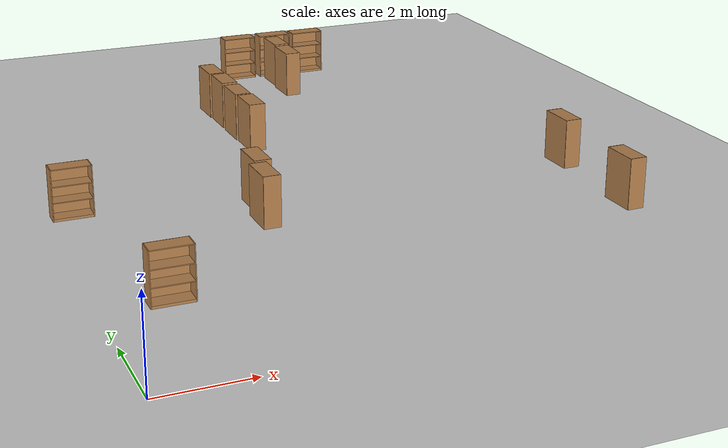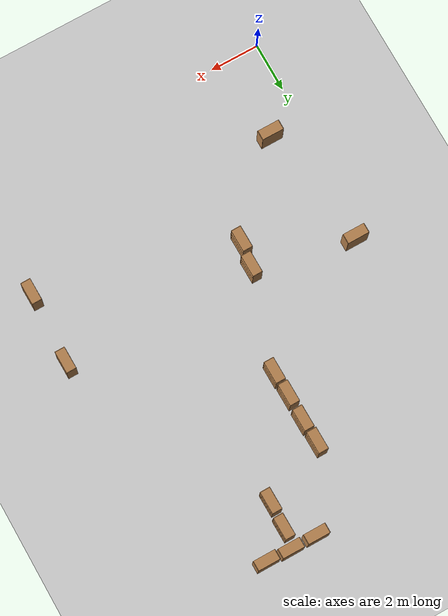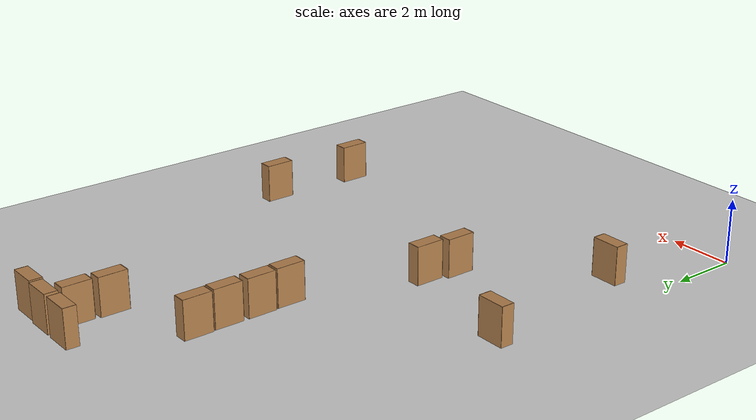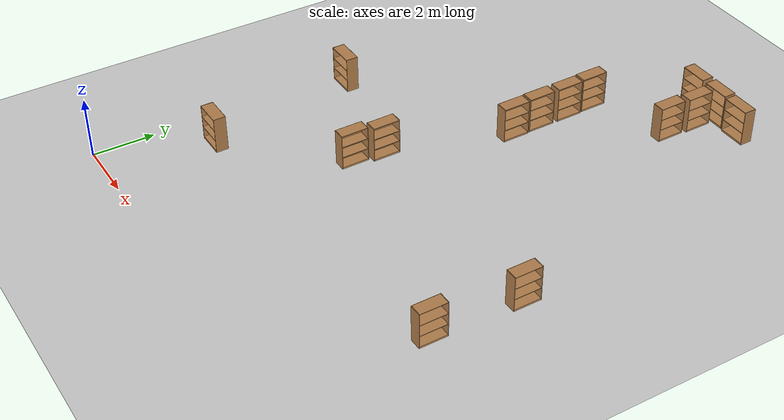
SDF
<sdf version="1.6">
 <world name="default">
  <model name="ground_plane">
   <static>1</static>
   <link name="link">
    <collision name="collision">
     <geometry><plane><normal>0 0 1</normal><size>100 100</size></plane></geometry>
     <surface>
      <contact><collide_bitmask>65535</collide_bitmask></contact>
      <friction><ode><mu>100</mu><mu2>50</mu2></ode></friction>
     </surface>
    </collision>
    <visual name="visual">
     <cast_shadows>0</cast_shadows>
     <geometry><plane><normal>0 0 1</normal><size>100 100</size></plane></geometry>
     <material>
      <script><uri>file://media/materials/scripts/gazebo.material</uri><name>Gazebo/Grey</name></script>
     </material>
    </visual>
   </link>
  </model>
  <model name="bookshelf_clone_clone_0_clone_clone_0_clone_2_clone">
   <static>1</static>
   <link name="link">
    <inertial><mass>1</mass></inertial>
    <collision name="back">
     <pose>0 0.005 0.6 0 -0 0</pose>
     <geometry><box><size>0.9 0.01 1.2</size></box></geometry>
    </collision>
    <visual name="visual1">
     <pose>0 0.005 0.6 0 -0 0</pose>
     <geometry><box><size>0.9 0.01 1.2</size></box></geometry>
     <material>
      <script><uri>file://media/materials/scripts/gazebo.material</uri><name>Gazebo/Wood</name></script>
     </material>
    </visual>
    <collision name="left_side">
     <pose>0.45 -0.195 0.6 0 -0 0</pose>
     <geometry><box><size>0.02 0.4 1.2</size></box></geometry>
    </collision>
    <visual name="visual2">
     <pose>0.45 -0.195 0.6 0 -0 0</pose>
     <geometry><box><size>0.02 0.4 1.2</size></box></geometry>
     <material>
      <script><uri>file://media/materials/scripts/gazebo.material</uri><name>Gazebo/Wood</name></script>
     </material>
    </visual>
    <collision name="right_side">
     <pose>-0.45 -0.195 0.6 0 -0 0</pose>
     <geometry><box><size>0.02 0.4 1.2</size></box></geometry>
    </collision>
    <visual name="visual3">
     <pose>-0.45 -0.195 0.6 0 -0 0</pose>
     <geometry><box><size>0.02 0.4 1.2</size></box></geometry>
     <material>
      <script><uri>file://media/materials/scripts/gazebo.material</uri><name>Gazebo/Wood</name></script>
     </material>
    </visual>
    <collision name="bottom">
     <pose>0 -0.195 0.03 0 -0 0</pose>
     <geometry><box><size>0.88 0.4 0.06</size></box></geometry>
    </collision>
    <visual name="visual4">
     <pose>0 -0.195 0.03 0 -0 0</pose>
     <geometry><box><size>0.88 0.4 0.06</size></box></geometry>
     <material>
      <script><uri>file://media/materials/scripts/gazebo.material</uri><name>Gazebo/Wood</name></script>
     </material>
    </visual>
    <collision name="top">
     <pose>0 -0.195 1.19 0 -0 0</pose>
     <geometry><box><size>0.88 0.4 0.02</size></box></geometry>
    </collision>
    <visual name="visual5">
     <pose>0 -0.195 1.19 0 -0 0</pose>
     <geometry><box><size>0.88 0.4 0.02</size></box></geometry>
     <material>
      <script><uri>file://media/materials/scripts/gazebo.material</uri><name>Gazebo/Wood</name></script>
     </material>
    </visual>
    <collision name="low_shelf">
     <pose>0 -0.195 0.43 0 -0 0</pose>
     <geometry><box><size>0.88 0.4 0.02</size></box></geometry>
    </collision>
    <visual name="visual6">
     <pose>0 -0.195 0.43 0 -0 0</pose>
     <geometry><box><size>0.88 0.4 0.02</size></box></geometry>
     <material>
      <script><uri>file://media/materials/scripts/gazebo.material</uri><name>Gazebo/Wood</name></script>
     </material>
    </visual>
    <collision name="high_shelf">
     <pose>0 -0.195 0.8 0 -0 0</pose>
     <geometry><box><size>0.88 0.4 0.02</size></box></geometry>
    </collision>
    <visual name="visual7">
     <pose>0 -0.195 0.8 0 -0 0</pose>
     <geometry><box><size>0.88 0.4 0.02</size></box></geometry>
     <material>
      <script><uri>file://media/materials/scripts/gazebo.material</uri><name>Gazebo/Wood</name></script>
     </material>
    </visual>
   </link>
   <pose>4.39037 7.62283 0 0 -0 1.58018</pose>
  </model>
  <model name="bookshelf_clone_clone_0_clone_clone_0_clone_2_clone_0">
   <static>1</static>
   <link name="link">
    <inertial><mass>1</mass></inertial>
    <collision name="back">
     <pose>0 0.005 0.6 0 -0 0</pose>
     <geometry><box><size>0.9 0.01 1.2</size></box></geometry>
    </collision>
    <visual name="visual1">
     <pose>0 0.005 0.6 0 -0 0</pose>
     <geometry><box><size>0.9 0.01 1.2</size></box></geometry>
     <material>
      <script><uri>file://media/materials/scripts/gazebo.material</uri><name>Gazebo/Wood</name></script>
     </material>
    </visual>
    <collision name="left_side">
     <pose>0.45 -0.195 0.6 0 -0 0</pose>
     <geometry><box><size>0.02 0.4 1.2</size></box></geometry>
    </collision>
    <visual name="visual2">
     <pose>0.45 -0.195 0.6 0 -0 0</pose>
     <geometry><box><size>0.02 0.4 1.2</size></box></geometry>
     <material>
      <script><uri>file://media/materials/scripts/gazebo.material</uri><name>Gazebo/Wood</name></script>
     </material>
    </visual>
    <collision name="right_side">
     <pose>-0.45 -0.195 0.6 0 -0 0</pose>
     <geometry><box><size>0.02 0.4 1.2</size></box></geometry>
    </collision>
    <visual name="visual3">
     <pose>-0.45 -0.195 0.6 0 -0 0</pose>
     <geometry><box><size>0.02 0.4 1.2</size></box></geometry>
     <material>
      <script><uri>file://media/materials/scripts/gazebo.material</uri><name>Gazebo/Wood</name></script>
     </material>
    </visual>
    <collision name="bottom">
     <pose>0 -0.195 0.03 0 -0 0</pose>
     <geometry><box><size>0.88 0.4 0.06</size></box></geometry>
    </collision>
    <visual name="visual4">
     <pose>0 -0.195 0.03 0 -0 0</pose>
     <geometry><box><size>0.88 0.4 0.06</size></box></geometry>
     <material>
      <script><uri>file://media/materials/scripts/gazebo.material</uri><name>Gazebo/Wood</name></script>
     </material>
    </visual>
    <collision name="top">
     <pose>0 -0.195 1.19 0 -0 0</pose>
     <geometry><box><size>0.88 0.4 0.02</size></box></geometry>
    </collision>
    <visual name="visual5">
     <pose>0 -0.195 1.19 0 -0 0</pose>
     <geometry><box><size>0.88 0.4 0.02</size></box></geometry>
     <material>
      <script><uri>file://media/materials/scripts/gazebo.material</uri><name>Gazebo/Wood</name></script>
     </material>
    </visual>
    <collision name="low_shelf">
     <pose>0 -0.195 0.43 0 -0 0</pose>
     <geometry><box><size>0.88 0.4 0.02</size></box></geometry>
    </collision>
    <visual name="visual6">
     <pose>0 -0.195 0.43 0 -0 0</pose>
     <geometry><box><size>0.88 0.4 0.02</size></box></geometry>
     <material>
      <script><uri>file://media/materials/scripts/gazebo.material</uri><name>Gazebo/Wood</name></script>
     </material>
    </visual>
    <collision name="high_shelf">
     <pose>0 -0.195 0.8 0 -0 0</pose>
     <geometry><box><size>0.88 0.4 0.02</size></box></geometry>
    </collision>
    <visual name="visual7">
     <pose>0 -0.195 0.8 0 -0 0</pose>
     <geometry><box><size>0.88 0.4 0.02</size></box></geometry>
     <material>
      <script><uri>file://media/materials/scripts/gazebo.material</uri><name>Gazebo/Wood</name></script>
     </material>
    </visual>
   </link>
   <pose>4.23583 6.61207 0 0 -0 1.58018</pose>
  </model>
  <model name="bookshelf_clone_clone_2_clone_3">
   <static>1</static>
   <link name="link">
    <inertial><mass>1</mass></inertial>
    <collision name="back">
     <pose>0 0.005 0.6 0 -0 0</pose>
     <geometry><box><size>0.9 0.01 1.2</size></box></geometry>
    </collision>
    <visual name="visual1">
     <pose>0 0.005 0.6 0 -0 0</pose>
     <geometry><box><size>0.9 0.01 1.2</size></box></geometry>
     <material>
      <script><uri>file://media/materials/scripts/gazebo.material</uri><name>Gazebo/Wood</name></script>
     </material>
    </visual>
    <collision name="left_side">
     <pose>0.45 -0.195 0.6 0 -0 0</pose>
     <geometry><box><size>0.02 0.4 1.2</size></box></geometry>
    </collision>
    <visual name="visual2">
     <pose>0.45 -0.195 0.6 0 -0 0</pose>
     <geometry><box><size>0.02 0.4 1.2</size></box></geometry>
     <material>
      <script><uri>file://media/materials/scripts/gazebo.material</uri><name>Gazebo/Wood</name></script>
     </material>
    </visual>
    <collision name="right_side">
     <pose>-0.45 -0.195 0.6 0 -0 0</pose>
     <geometry><box><size>0.02 0.4 1.2</size></box></geometry>
    </collision>
    <visual name="visual3">
     <pose>-0.45 -0.195 0.6 0 -0 0</pose>
     <geometry><box><size>0.02 0.4 1.2</size></box></geometry>
     <material>
      <script><uri>file://media/materials/scripts/gazebo.material</uri><name>Gazebo/Wood</name></script>
     </material>
    </visual>
    <collision name="bottom">
     <pose>0 -0.195 0.03 0 -0 0</pose>
     <geometry><box><size>0.88 0.4 0.06</size></box></geometry>
    </collision>
    <visual name="visual4">
     <pose>0 -0.195 0.03 0 -0 0</pose>
     <geometry><box><size>0.88 0.4 0.06</size></box></geometry>
     <material>
      <script><uri>file://media/materials/scripts/gazebo.material</uri><name>Gazebo/Wood</name></script>
     </material>
    </visual>
    <collision name="top">
     <pose>0 -0.195 1.19 0 -0 0</pose>
     <geometry><box><size>0.88 0.4 0.02</size></box></geometry>
    </collision>
    <visual name="visual5">
     <pose>0 -0.195 1.19 0 -0 0</pose>
     <geometry><box><size>0.88 0.4 0.02</size></box></geometry>
     <material>
      <script><uri>file://media/materials/scripts/gazebo.material</uri><name>Gazebo/Wood</name></script>
     </material>
    </visual>
    <collision name="low_shelf">
     <pose>0 -0.195 0.43 0 -0 0</pose>
     <geometry><box><size>0.88 0.4 0.02</size></box></geometry>
    </collision>
    <visual name="visual6">
     <pose>0 -0.195 0.43 0 -0 0</pose>
     <geometry><box><size>0.88 0.4 0.02</size></box></geometry>
     <material>
      <script><uri>file://media/materials/scripts/gazebo.material</uri><name>Gazebo/Wood</name></script>
     </material>
    </visual>
    <collision name="high_shelf">
     <pose>0 -0.195 0.8 0 -0 0</pose>
     <geometry><box><size>0.88 0.4 0.02</size></box></geometry>
    </collision>
    <visual name="visual7">
     <pose>0 -0.195 0.8 0 -0 0</pose>
     <geometry><box><size>0.88 0.4 0.02</size></box></geometry>
     <material>
      <script><uri>file://media/materials/scripts/gazebo.material</uri><name>Gazebo/Wood</name></script>
     </material>
    </visual>
   </link>
   <pose>8.52427 17.6746 0 0 -0 0</pose>
  </model>
  <model name="bookshelf_clone_clone_2_clone_4">
   <static>1</static>
   <link name="link">
    <inertial><mass>1</mass></inertial>
    <collision name="back">
     <pose>0 0.005 0.6 0 -0 0</pose>
     <geometry><box><size>0.9 0.01 1.2</size></box></geometry>
    </collision>
    <visual name="visual1">
     <pose>0 0.005 0.6 0 -0 0</pose>
     <geometry><box><size>0.9 0.01 1.2</size></box></geometry>
     <material>
      <script><uri>file://media/materials/scripts/gazebo.material</uri><name>Gazebo/Wood</name></script>
     </material>
    </visual>
    <collision name="left_side">
     <pose>0.45 -0.195 0.6 0 -0 0</pose>
     <geometry><box><size>0.02 0.4 1.2</size></box></geometry>
    </collision>
    <visual name="visual2">
     <pose>0.45 -0.195 0.6 0 -0 0</pose>
     <geometry><box><size>0.02 0.4 1.2</size></box></geometry>
     <material>
      <script><uri>file://media/materials/scripts/gazebo.material</uri><name>Gazebo/Wood</name></script>
     </material>
    </visual>
    <collision name="right_side">
     <pose>-0.45 -0.195 0.6 0 -0 0</pose>
     <geometry><box><size>0.02 0.4 1.2</size></box></geometry>
    </collision>
    <visual name="visual3">
     <pose>-0.45 -0.195 0.6 0 -0 0</pose>
     <geometry><box><size>0.02 0.4 1.2</size></box></geometry>
     <material>
      <script><uri>file://media/materials/scripts/gazebo.material</uri><name>Gazebo/Wood</name></script>
     </material>
    </visual>
    <collision name="bottom">
     <pose>0 -0.195 0.03 0 -0 0</pose>
     <geometry><box><size>0.88 0.4 0.06</size></box></geometry>
    </collision>
    <visual name="visual4">
     <pose>0 -0.195 0.03 0 -0 0</pose>
     <geometry><box><size>0.88 0.4 0.06</size></box></geometry>
     <material>
      <script><uri>file://media/materials/scripts/gazebo.material</uri><name>Gazebo/Wood</name></script>
     </material>
    </visual>
    <collision name="top">
     <pose>0 -0.195 1.19 0 -0 0</pose>
     <geometry><box><size>0.88 0.4 0.02</size></box></geometry>
    </collision>
    <visual name="visual5">
     <pose>0 -0.195 1.19 0 -0 0</pose>
     <geometry><box><size>0.88 0.4 0.02</size></box></geometry>
     <material>
      <script><uri>file://media/materials/scripts/gazebo.material</uri><name>Gazebo/Wood</name></script>
     </material>
    </visual>
    <collision name="low_shelf">
     <pose>0 -0.195 0.43 0 -0 0</pose>
     <geometry><box><size>0.88 0.4 0.02</size></box></geometry>
    </collision>
    <visual name="visual6">
     <pose>0 -0.195 0.43 0 -0 0</pose>
     <geometry><box><size>0.88 0.4 0.02</size></box></geometry>
     <material>
      <script><uri>file://media/materials/scripts/gazebo.material</uri><name>Gazebo/Wood</name></script>
     </material>
    </visual>
    <collision name="high_shelf">
     <pose>0 -0.195 0.8 0 -0 0</pose>
     <geometry><box><size>0.88 0.4 0.02</size></box></geometry>
    </collision>
    <visual name="visual7">
     <pose>0 -0.195 0.8 0 -0 0</pose>
     <geometry><box><size>0.88 0.4 0.02</size></box></geometry>
     <material>
      <script><uri>file://media/materials/scripts/gazebo.material</uri><name>Gazebo/Wood</name></script>
     </material>
    </visual>
   </link>
   <pose>9.51696 17.6229 0 0 -0 0</pose>
  </model>
  <model name="bookshelf_clone_clone_0_clone_clone_0_clone_5_clone_clone_clone_1">
   <static>1</static>
   <link name="link">
    <inertial><mass>1</mass></inertial>
    <collision name="back">
     <pose>0 0.005 0.6 0 -0 0</pose>
     <geometry><box><size>0.9 0.01 1.2</size></box></geometry>
    </collision>
    <visual name="visual1">
     <pose>0 0.005 0.6 0 -0 0</pose>
     <geometry><box><size>0.9 0.01 1.2</size></box></geometry>
     <material>
      <script><uri>file://media/materials/scripts/gazebo.material</uri><name>Gazebo/Wood</name></script>
     </material>
    </visual>
    <collision name="left_side">
     <pose>0.45 -0.195 0.6 0 -0 0</pose>
     <geometry><box><size>0.02 0.4 1.2</size></box></geometry>
    </collision>
    <visual name="visual2">
     <pose>0.45 -0.195 0.6 0 -0 0</pose>
     <geometry><box><size>0.02 0.4 1.2</size></box></geometry>
     <material>
      <script><uri>file://media/materials/scripts/gazebo.material</uri><name>Gazebo/Wood</name></script>
     </material>
    </visual>
    <collision name="right_side">
     <pose>-0.45 -0.195 0.6 0 -0 0</pose>
     <geometry><box><size>0.02 0.4 1.2</size></box></geometry>
    </collision>
    <visual name="visual3">
     <pose>-0.45 -0.195 0.6 0 -0 0</pose>
     <geometry><box><size>0.02 0.4 1.2</size></box></geometry>
     <material>
      <script><uri>file://media/materials/scripts/gazebo.material</uri><name>Gazebo/Wood</name></script>
     </material>
    </visual>
    <collision name="bottom">
     <pose>0 -0.195 0.03 0 -0 0</pose>
     <geometry><box><size>0.88 0.4 0.06</size></box></geometry>
    </collision>
    <visual name="visual4">
     <pose>0 -0.195 0.03 0 -0 0</pose>
     <geometry><box><size>0.88 0.4 0.06</size></box></geometry>
     <material>
      <script><uri>file://media/materials/scripts/gazebo.material</uri><name>Gazebo/Wood</name></script>
     </material>
    </visual>
    <collision name="top">
     <pose>0 -0.195 1.19 0 -0 0</pose>
     <geometry><box><size>0.88 0.4 0.02</size></box></geometry>
    </collision>
    <visual name="visual5">
     <pose>0 -0.195 1.19 0 -0 0</pose>
     <geometry><box><size>0.88 0.4 0.02</size></box></geometry>
     <material>
      <script><uri>file://media/materials/scripts/gazebo.material</uri><name>Gazebo/Wood</name></script>
     </material>
    </visual>
    <collision name="low_shelf">
     <pose>0 -0.195 0.43 0 -0 0</pose>
     <geometry><box><size>0.88 0.4 0.02</size></box></geometry>
    </collision>
    <visual name="visual6">
     <pose>0 -0.195 0.43 0 -0 0</pose>
     <geometry><box><size>0.88 0.4 0.02</size></box></geometry>
     <material>
      <script><uri>file://media/materials/scripts/gazebo.material</uri><name>Gazebo/Wood</name></script>
     </material>
    </visual>
    <collision name="high_shelf">
     <pose>0 -0.195 0.8 0 -0 0</pose>
     <geometry><box><size>0.88 0.4 0.02</size></box></geometry>
    </collision>
    <visual name="visual7">
     <pose>0 -0.195 0.8 0 -0 0</pose>
     <geometry><box><size>0.88 0.4 0.02</size></box></geometry>
     <material>
      <script><uri>file://media/materials/scripts/gazebo.material</uri><name>Gazebo/Wood</name></script>
     </material>
    </visual>
   </link>
   <pose>12.0388 4.55546 0 0 -0 1.58018</pose>
  </model>
  <model name="bookshelf_clone_clone_0_clone_clone_0_clone_5_clone_clone_clone_4">
   <static>1</static>
   <link name="link">
    <inertial><mass>1</mass></inertial>
    <collision name="back">
     <pose>0 0.005 0.6 0 -0 0</pose>
     <geometry><box><size>0.9 0.01 1.2</size></box></geometry>
    </collision>
    <visual name="visual1">
     <pose>0 0.005 0.6 0 -0 0</pose>
     <geometry><box><size>0.9 0.01 1.2</size></box></geometry>
     <material>
      <script><uri>file://media/materials/scripts/gazebo.material</uri><name>Gazebo/Wood</name></script>
     </material>
    </visual>
    <collision name="left_side">
     <pose>0.45 -0.195 0.6 0 -0 0</pose>
     <geometry><box><size>0.02 0.4 1.2</size></box></geometry>
    </collision>
    <visual name="visual2">
     <pose>0.45 -0.195 0.6 0 -0 0</pose>
     <geometry><box><size>0.02 0.4 1.2</size></box></geometry>
     <material>
      <script><uri>file://media/materials/scripts/gazebo.material</uri><name>Gazebo/Wood</name></script>
     </material>
    </visual>
    <collision name="right_side">
     <pose>-0.45 -0.195 0.6 0 -0 0</pose>
     <geometry><box><size>0.02 0.4 1.2</size></box></geometry>
    </collision>
    <visual name="visual3">
     <pose>-0.45 -0.195 0.6 0 -0 0</pose>
     <geometry><box><size>0.02 0.4 1.2</size></box></geometry>
     <material>
      <script><uri>file://media/materials/scripts/gazebo.material</uri><name>Gazebo/Wood</name></script>
     </material>
    </visual>
    <collision name="bottom">
     <pose>0 -0.195 0.03 0 -0 0</pose>
     <geometry><box><size>0.88 0.4 0.06</size></box></geometry>
    </collision>
    <visual name="visual4">
     <pose>0 -0.195 0.03 0 -0 0</pose>
     <geometry><box><size>0.88 0.4 0.06</size></box></geometry>
     <material>
      <script><uri>file://media/materials/scripts/gazebo.material</uri><name>Gazebo/Wood</name></script>
     </material>
    </visual>
    <collision name="top">
     <pose>0 -0.195 1.19 0 -0 0</pose>
     <geometry><box><size>0.88 0.4 0.02</size></box></geometry>
    </collision>
    <visual name="visual5">
     <pose>0 -0.195 1.19 0 -0 0</pose>
     <geometry><box><size>0.88 0.4 0.02</size></box></geometry>
     <material>
      <script><uri>file://media/materials/scripts/gazebo.material</uri><name>Gazebo/Wood</name></script>
     </material>
    </visual>
    <collision name="low_shelf">
     <pose>0 -0.195 0.43 0 -0 0</pose>
     <geometry><box><size>0.88 0.4 0.02</size></box></geometry>
    </collision>
    <visual name="visual6">
     <pose>0 -0.195 0.43 0 -0 0</pose>
     <geometry><box><size>0.88 0.4 0.02</size></box></geometry>
     <material>
      <script><uri>file://media/materials/scripts/gazebo.material</uri><name>Gazebo/Wood</name></script>
     </material>
    </visual>
    <collision name="high_shelf">
     <pose>0 -0.195 0.8 0 -0 0</pose>
     <geometry><box><size>0.88 0.4 0.02</size></box></geometry>
    </collision>
    <visual name="visual7">
     <pose>0 -0.195 0.8 0 -0 0</pose>
     <geometry><box><size>0.88 0.4 0.02</size></box></geometry>
     <material>
      <script><uri>file://media/materials/scripts/gazebo.material</uri><name>Gazebo/Wood</name></script>
     </material>
    </visual>
   </link>
   <pose>12.1566 7.44917 0 0 -0 1.58018</pose>
  </model>
  <model name="bookshelf_clone_clone_2_clone_2_clone_0">
   <static>1</static>
   <link name="link">
    <inertial><mass>1</mass></inertial>
    <collision name="back">
     <pose>0 0.005 0.6 0 -0 0</pose>
     <geometry><box><size>0.9 0.01 1.2</size></box></geometry>
    </collision>
    <visual name="visual1">
     <pose>0 0.005 0.6 0 -0 0</pose>
     <geometry><box><size>0.9 0.01 1.2</size></box></geometry>
     <material>
      <script><uri>file://media/materials/scripts/gazebo.material</uri><name>Gazebo/Wood</name></script>
     </material>
    </visual>
    <collision name="left_side">
     <pose>0.45 -0.195 0.6 0 -0 0</pose>
     <geometry><box><size>0.02 0.4 1.2</size></box></geometry>
    </collision>
    <visual name="visual2">
     <pose>0.45 -0.195 0.6 0 -0 0</pose>
     <geometry><box><size>0.02 0.4 1.2</size></box></geometry>
     <material>
      <script><uri>file://media/materials/scripts/gazebo.material</uri><name>Gazebo/Wood</name></script>
     </material>
    </visual>
    <collision name="right_side">
     <pose>-0.45 -0.195 0.6 0 -0 0</pose>
     <geometry><box><size>0.02 0.4 1.2</size></box></geometry>
    </collision>
    <visual name="visual3">
     <pose>-0.45 -0.195 0.6 0 -0 0</pose>
     <geometry><box><size>0.02 0.4 1.2</size></box></geometry>
     <material>
      <script><uri>file://media/materials/scripts/gazebo.material</uri><name>Gazebo/Wood</name></script>
     </material>
    </visual>
    <collision name="bottom">
     <pose>0 -0.195 0.03 0 -0 0</pose>
     <geometry><box><size>0.88 0.4 0.06</size></box></geometry>
    </collision>
    <visual name="visual4">
     <pose>0 -0.195 0.03 0 -0 0</pose>
     <geometry><box><size>0.88 0.4 0.06</size></box></geometry>
     <material>
      <script><uri>file://media/materials/scripts/gazebo.material</uri><name>Gazebo/Wood</name></script>
     </material>
    </visual>
    <collision name="top">
     <pose>0 -0.195 1.19 0 -0 0</pose>
     <geometry><box><size>0.88 0.4 0.02</size></box></geometry>
    </collision>
    <visual name="visual5">
     <pose>0 -0.195 1.19 0 -0 0</pose>
     <geometry><box><size>0.88 0.4 0.02</size></box></geometry>
     <material>
      <script><uri>file://media/materials/scripts/gazebo.material</uri><name>Gazebo/Wood</name></script>
     </material>
    </visual>
    <collision name="low_shelf">
     <pose>0 -0.195 0.43 0 -0 0</pose>
     <geometry><box><size>0.88 0.4 0.02</size></box></geometry>
    </collision>
    <visual name="visual6">
     <pose>0 -0.195 0.43 0 -0 0</pose>
     <geometry><box><size>0.88 0.4 0.02</size></box></geometry>
     <material>
      <script><uri>file://media/materials/scripts/gazebo.material</uri><name>Gazebo/Wood</name></script>
     </material>
    </visual>
    <collision name="high_shelf">
     <pose>0 -0.195 0.8 0 -0 0</pose>
     <geometry><box><size>0.88 0.4 0.02</size></box></geometry>
    </collision>
    <visual name="visual7">
     <pose>0 -0.195 0.8 0 -0 0</pose>
     <geometry><box><size>0.88 0.4 0.02</size></box></geometry>
     <material>
      <script><uri>file://media/materials/scripts/gazebo.material</uri><name>Gazebo/Wood</name></script>
     </material>
    </visual>
   </link>
   <pose>0.618675 8.70804 0 0 -0 0</pose>
  </model>
  <model name="bookshelf_clone_clone_2_clone_2_clone_0_clone">
   <static>1</static>
   <link name="link">
    <inertial><mass>1</mass></inertial>
    <collision name="back">
     <pose>0 0.005 0.6 0 -0 0</pose>
     <geometry><box><size>0.9 0.01 1.2</size></box></geometry>
    </collision>
    <visual name="visual1">
     <pose>0 0.005 0.6 0 -0 0</pose>
     <geometry><box><size>0.9 0.01 1.2</size></box></geometry>
     <material>
      <script><uri>file://media/materials/scripts/gazebo.material</uri><name>Gazebo/Wood</name></script>
     </material>
    </visual>
    <collision name="left_side">
     <pose>0.45 -0.195 0.6 0 -0 0</pose>
     <geometry><box><size>0.02 0.4 1.2</size></box></geometry>
    </collision>
    <visual name="visual2">
     <pose>0.45 -0.195 0.6 0 -0 0</pose>
     <geometry><box><size>0.02 0.4 1.2</size></box></geometry>
     <material>
      <script><uri>file://media/materials/scripts/gazebo.material</uri><name>Gazebo/Wood</name></script>
     </material>
    </visual>
    <collision name="right_side">
     <pose>-0.45 -0.195 0.6 0 -0 0</pose>
     <geometry><box><size>0.02 0.4 1.2</size></box></geometry>
    </collision>
    <visual name="visual3">
     <pose>-0.45 -0.195 0.6 0 -0 0</pose>
     <geometry><box><size>0.02 0.4 1.2</size></box></geometry>
     <material>
      <script><uri>file://media/materials/scripts/gazebo.material</uri><name>Gazebo/Wood</name></script>
     </material>
    </visual>
    <collision name="bottom">
     <pose>0 -0.195 0.03 0 -0 0</pose>
     <geometry><box><size>0.88 0.4 0.06</size></box></geometry>
    </collision>
    <visual name="visual4">
     <pose>0 -0.195 0.03 0 -0 0</pose>
     <geometry><box><size>0.88 0.4 0.06</size></box></geometry>
     <material>
      <script><uri>file://media/materials/scripts/gazebo.material</uri><name>Gazebo/Wood</name></script>
     </material>
    </visual>
    <collision name="top">
     <pose>0 -0.195 1.19 0 -0 0</pose>
     <geometry><box><size>0.88 0.4 0.02</size></box></geometry>
    </collision>
    <visual name="visual5">
     <pose>0 -0.195 1.19 0 -0 0</pose>
     <geometry><box><size>0.88 0.4 0.02</size></box></geometry>
     <material>
      <script><uri>file://media/materials/scripts/gazebo.material</uri><name>Gazebo/Wood</name></script>
     </material>
    </visual>
    <collision name="low_shelf">
     <pose>0 -0.195 0.43 0 -0 0</pose>
     <geometry><box><size>0.88 0.4 0.02</size></box></geometry>
    </collision>
    <visual name="visual6">
     <pose>0 -0.195 0.43 0 -0 0</pose>
     <geometry><box><size>0.88 0.4 0.02</size></box></geometry>
     <material>
      <script><uri>file://media/materials/scripts/gazebo.material</uri><name>Gazebo/Wood</name></script>
     </material>
    </visual>
    <collision name="high_shelf">
     <pose>0 -0.195 0.8 0 -0 0</pose>
     <geometry><box><size>0.88 0.4 0.02</size></box></geometry>
    </collision>
    <visual name="visual7">
     <pose>0 -0.195 0.8 0 -0 0</pose>
     <geometry><box><size>0.88 0.4 0.02</size></box></geometry>
     <material>
      <script><uri>file://media/materials/scripts/gazebo.material</uri><name>Gazebo/Wood</name></script>
     </material>
    </visual>
   </link>
   <pose>1.41081 3.66672 0 0 -0 0</pose>
  </model>
  <model name="bookshelf_clone_clone_0_clone_clone_0_clone_5_clone_clone_clone_4_clone_2">
   <static>1</static>
   <link name="link">
    <inertial><mass>1</mass></inertial>
    <collision name="back">
     <pose>0 0.005 0.6 0 -0 0</pose>
     <geometry><box><size>0.9 0.01 1.2</size></box></geometry>
    </collision>
    <visual name="visual1">
     <pose>0 0.005 0.6 0 -0 0</pose>
     <geometry><box><size>0.9 0.01 1.2</size></box></geometry>
     <material>
      <script><uri>file://media/materials/scripts/gazebo.material</uri><name>Gazebo/Wood</name></script>
     </material>
    </visual>
    <collision name="left_side">
     <pose>0.45 -0.195 0.6 0 -0 0</pose>
     <geometry><box><size>0.02 0.4 1.2</size></box></geometry>
    </collision>
    <visual name="visual2">
     <pose>0.45 -0.195 0.6 0 -0 0</pose>
     <geometry><box><size>0.02 0.4 1.2</size></box></geometry>
     <material>
      <script><uri>file://media/materials/scripts/gazebo.material</uri><name>Gazebo/Wood</name></script>
     </material>
    </visual>
    <collision name="right_side">
     <pose>-0.45 -0.195 0.6 0 -0 0</pose>
     <geometry><box><size>0.02 0.4 1.2</size></box></geometry>
    </collision>
    <visual name="visual3">
     <pose>-0.45 -0.195 0.6 0 -0 0</pose>
     <geometry><box><size>0.02 0.4 1.2</size></box></geometry>
     <material>
      <script><uri>file://media/materials/scripts/gazebo.material</uri><name>Gazebo/Wood</name></script>
     </material>
    </visual>
    <collision name="bottom">
     <pose>0 -0.195 0.03 0 -0 0</pose>
     <geometry><box><size>0.88 0.4 0.06</size></box></geometry>
    </collision>
    <visual name="visual4">
     <pose>0 -0.195 0.03 0 -0 0</pose>
     <geometry><box><size>0.88 0.4 0.06</size></box></geometry>
     <material>
      <script><uri>file://media/materials/scripts/gazebo.material</uri><name>Gazebo/Wood</name></script>
     </material>
    </visual>
    <collision name="top">
     <pose>0 -0.195 1.19 0 -0 0</pose>
     <geometry><box><size>0.88 0.4 0.02</size></box></geometry>
    </collision>
    <visual name="visual5">
     <pose>0 -0.195 1.19 0 -0 0</pose>
     <geometry><box><size>0.88 0.4 0.02</size></box></geometry>
     <material>
      <script><uri>file://media/materials/scripts/gazebo.material</uri><name>Gazebo/Wood</name></script>
     </material>
    </visual>
    <collision name="low_shelf">
     <pose>0 -0.195 0.43 0 -0 0</pose>
     <geometry><box><size>0.88 0.4 0.02</size></box></geometry>
    </collision>
    <visual name="visual6">
     <pose>0 -0.195 0.43 0 -0 0</pose>
     <geometry><box><size>0.88 0.4 0.02</size></box></geometry>
     <material>
      <script><uri>file://media/materials/scripts/gazebo.material</uri><name>Gazebo/Wood</name></script>
     </material>
    </visual>
    <collision name="high_shelf">
     <pose>0 -0.195 0.8 0 -0 0</pose>
     <geometry><box><size>0.88 0.4 0.02</size></box></geometry>
    </collision>
    <visual name="visual7">
     <pose>0 -0.195 0.8 0 -0 0</pose>
     <geometry><box><size>0.88 0.4 0.02</size></box></geometry>
     <material>
      <script><uri>file://media/materials/scripts/gazebo.material</uri><name>Gazebo/Wood</name></script>
     </material>
    </visual>
   </link>
   <pose>5.6324 11.5384 0 0 -0 1.58018</pose>
  </model>
  <model name="bookshelf_clone_clone_0_clone_clone_0_clone_5_clone_clone_clone_4_clone_3">
   <static>1</static>
   <link name="link">
    <inertial><mass>1</mass></inertial>
    <collision name="back">
     <pose>0 0.005 0.6 0 -0 0</pose>
     <geometry><box><size>0.9 0.01 1.2</size></box></geometry>
    </collision>
    <visual name="visual1">
     <pose>0 0.005 0.6 0 -0 0</pose>
     <geometry><box><size>0.9 0.01 1.2</size></box></geometry>
     <material>
      <script><uri>file://media/materials/scripts/gazebo.material</uri><name>Gazebo/Wood</name></script>
     </material>
    </visual>
    <collision name="left_side">
     <pose>0.45 -0.195 0.6 0 -0 0</pose>
     <geometry><box><size>0.02 0.4 1.2</size></box></geometry>
    </collision>
    <visual name="visual2">
     <pose>0.45 -0.195 0.6 0 -0 0</pose>
     <geometry><box><size>0.02 0.4 1.2</size></box></geometry>
     <material>
      <script><uri>file://media/materials/scripts/gazebo.material</uri><name>Gazebo/Wood</name></script>
     </material>
    </visual>
    <collision name="right_side">
     <pose>-0.45 -0.195 0.6 0 -0 0</pose>
     <geometry><box><size>0.02 0.4 1.2</size></box></geometry>
    </collision>
    <visual name="visual3">
     <pose>-0.45 -0.195 0.6 0 -0 0</pose>
     <geometry><box><size>0.02 0.4 1.2</size></box></geometry>
     <material>
      <script><uri>file://media/materials/scripts/gazebo.material</uri><name>Gazebo/Wood</name></script>
     </material>
    </visual>
    <collision name="bottom">
     <pose>0 -0.195 0.03 0 -0 0</pose>
     <geometry><box><size>0.88 0.4 0.06</size></box></geometry>
    </collision>
    <visual name="visual4">
     <pose>0 -0.195 0.03 0 -0 0</pose>
     <geometry><box><size>0.88 0.4 0.06</size></box></geometry>
     <material>
      <script><uri>file://media/materials/scripts/gazebo.material</uri><name>Gazebo/Wood</name></script>
     </material>
    </visual>
    <collision name="top">
     <pose>0 -0.195 1.19 0 -0 0</pose>
     <geometry><box><size>0.88 0.4 0.02</size></box></geometry>
    </collision>
    <visual name="visual5">
     <pose>0 -0.195 1.19 0 -0 0</pose>
     <geometry><box><size>0.88 0.4 0.02</size></box></geometry>
     <material>
      <script><uri>file://media/materials/scripts/gazebo.material</uri><name>Gazebo/Wood</name></script>
     </material>
    </visual>
    <collision name="low_shelf">
     <pose>0 -0.195 0.43 0 -0 0</pose>
     <geometry><box><size>0.88 0.4 0.02</size></box></geometry>
    </collision>
    <visual name="visual6">
     <pose>0 -0.195 0.43 0 -0 0</pose>
     <geometry><box><size>0.88 0.4 0.02</size></box></geometry>
     <material>
      <script><uri>file://media/materials/scripts/gazebo.material</uri><name>Gazebo/Wood</name></script>
     </material>
    </visual>
    <collision name="high_shelf">
     <pose>0 -0.195 0.8 0 -0 0</pose>
     <geometry><box><size>0.88 0.4 0.02</size></box></geometry>
    </collision>
    <visual name="visual7">
     <pose>0 -0.195 0.8 0 -0 0</pose>
     <geometry><box><size>0.88 0.4 0.02</size></box></geometry>
     <material>
      <script><uri>file://media/materials/scripts/gazebo.material</uri><name>Gazebo/Wood</name></script>
     </material>
    </visual>
   </link>
   <pose>5.59485 12.5113 0 0 -0 1.58018</pose>
  </model>
  <model name="bookshelf_clone_clone_0_clone_clone_0_clone_5_clone_clone_clone_4_clone_4">
   <static>1</static>
   <link name="link">
    <inertial><mass>1</mass></inertial>
    <collision name="back">
     <pose>0 0.005 0.6 0 -0 0</pose>
     <geometry><box><size>0.9 0.01 1.2</size></box></geometry>
    </collision>
    <visual name="visual1">
     <pose>0 0.005 0.6 0 -0 0</pose>
     <geometry><box><size>0.9 0.01 1.2</size></box></geometry>
     <material>
      <script><uri>file://media/materials/scripts/gazebo.material</uri><name>Gazebo/Wood</name></script>
     </material>
    </visual>
    <collision name="left_side">
     <pose>0.45 -0.195 0.6 0 -0 0</pose>
     <geometry><box><size>0.02 0.4 1.2</size></box></geometry>
    </collision>
    <visual name="visual2">
     <pose>0.45 -0.195 0.6 0 -0 0</pose>
     <geometry><box><size>0.02 0.4 1.2</size></box></geometry>
     <material>
      <script><uri>file://media/materials/scripts/gazebo.material</uri><name>Gazebo/Wood</name></script>
     </material>
    </visual>
    <collision name="right_side">
     <pose>-0.45 -0.195 0.6 0 -0 0</pose>
     <geometry><box><size>0.02 0.4 1.2</size></box></geometry>
    </collision>
    <visual name="visual3">
     <pose>-0.45 -0.195 0.6 0 -0 0</pose>
     <geometry><box><size>0.02 0.4 1.2</size></box></geometry>
     <material>
      <script><uri>file://media/materials/scripts/gazebo.material</uri><name>Gazebo/Wood</name></script>
     </material>
    </visual>
    <collision name="bottom">
     <pose>0 -0.195 0.03 0 -0 0</pose>
     <geometry><box><size>0.88 0.4 0.06</size></box></geometry>
    </collision>
    <visual name="visual4">
     <pose>0 -0.195 0.03 0 -0 0</pose>
     <geometry><box><size>0.88 0.4 0.06</size></box></geometry>
     <material>
      <script><uri>file://media/materials/scripts/gazebo.material</uri><name>Gazebo/Wood</name></script>
     </material>
    </visual>
    <collision name="top">
     <pose>0 -0.195 1.19 0 -0 0</pose>
     <geometry><box><size>0.88 0.4 0.02</size></box></geometry>
    </collision>
    <visual name="visual5">
     <pose>0 -0.195 1.19 0 -0 0</pose>
     <geometry><box><size>0.88 0.4 0.02</size></box></geometry>
     <material>
      <script><uri>file://media/materials/scripts/gazebo.material</uri><name>Gazebo/Wood</name></script>
     </material>
    </visual>
    <collision name="low_shelf">
     <pose>0 -0.195 0.43 0 -0 0</pose>
     <geometry><box><size>0.88 0.4 0.02</size></box></geometry>
    </collision>
    <visual name="visual6">
     <pose>0 -0.195 0.43 0 -0 0</pose>
     <geometry><box><size>0.88 0.4 0.02</size></box></geometry>
     <material>
      <script><uri>file://media/materials/scripts/gazebo.material</uri><name>Gazebo/Wood</name></script>
     </material>
    </visual>
    <collision name="high_shelf">
     <pose>0 -0.195 0.8 0 -0 0</pose>
     <geometry><box><size>0.88 0.4 0.02</size></box></geometry>
    </collision>
    <visual name="visual7">
     <pose>0 -0.195 0.8 0 -0 0</pose>
     <geometry><box><size>0.88 0.4 0.02</size></box></geometry>
     <material>
      <script><uri>file://media/materials/scripts/gazebo.material</uri><name>Gazebo/Wood</name></script>
     </material>
    </visual>
   </link>
   <pose>5.59293 13.5784 0 0 -0 1.58018</pose>
  </model>
  <model name="bookshelf_clone_clone_0_clone_clone_0_clone_5_clone_clone_clone_4_clone_5">
   <static>1</static>
   <link name="link">
    <inertial><mass>1</mass></inertial>
    <collision name="back">
     <pose>0 0.005 0.6 0 -0 0</pose>
     <geometry><box><size>0.9 0.01 1.2</size></box></geometry>
    </collision>
    <visual name="visual1">
     <pose>0 0.005 0.6 0 -0 0</pose>
     <geometry><box><size>0.9 0.01 1.2</size></box></geometry>
     <material>
      <script><uri>file://media/materials/scripts/gazebo.material</uri><name>Gazebo/Wood</name></script>
     </material>
    </visual>
    <collision name="left_side">
     <pose>0.45 -0.195 0.6 0 -0 0</pose>
     <geometry><box><size>0.02 0.4 1.2</size></box></geometry>
    </collision>
    <visual name="visual2">
     <pose>0.45 -0.195 0.6 0 -0 0</pose>
     <geometry><box><size>0.02 0.4 1.2</size></box></geometry>
     <material>
      <script><uri>file://media/materials/scripts/gazebo.material</uri><name>Gazebo/Wood</name></script>
     </material>
    </visual>
    <collision name="right_side">
     <pose>-0.45 -0.195 0.6 0 -0 0</pose>
     <geometry><box><size>0.02 0.4 1.2</size></box></geometry>
    </collision>
    <visual name="visual3">
     <pose>-0.45 -0.195 0.6 0 -0 0</pose>
     <geometry><box><size>0.02 0.4 1.2</size></box></geometry>
     <material>
      <script><uri>file://media/materials/scripts/gazebo.material</uri><name>Gazebo/Wood</name></script>
     </material>
    </visual>
    <collision name="bottom">
     <pose>0 -0.195 0.03 0 -0 0</pose>
     <geometry><box><size>0.88 0.4 0.06</size></box></geometry>
    </collision>
    <visual name="visual4">
     <pose>0 -0.195 0.03 0 -0 0</pose>
     <geometry><box><size>0.88 0.4 0.06</size></box></geometry>
     <material>
      <script><uri>file://media/materials/scripts/gazebo.material</uri><name>Gazebo/Wood</name></script>
     </material>
    </visual>
    <collision name="top">
     <pose>0 -0.195 1.19 0 -0 0</pose>
     <geometry><box><size>0.88 0.4 0.02</size></box></geometry>
    </collision>
    <visual name="visual5">
     <pose>0 -0.195 1.19 0 -0 0</pose>
     <geometry><box><size>0.88 0.4 0.02</size></box></geometry>
     <material>
      <script><uri>file://media/materials/scripts/gazebo.material</uri><name>Gazebo/Wood</name></script>
     </material>
    </visual>
    <collision name="low_shelf">
     <pose>0 -0.195 0.43 0 -0 0</pose>
     <geometry><box><size>0.88 0.4 0.02</size></box></geometry>
    </collision>
    <visual name="visual6">
     <pose>0 -0.195 0.43 0 -0 0</pose>
     <geometry><box><size>0.88 0.4 0.02</size></box></geometry>
     <material>
      <script><uri>file://media/materials/scripts/gazebo.material</uri><name>Gazebo/Wood</name></script>
     </material>
    </visual>
    <collision name="high_shelf">
     <pose>0 -0.195 0.8 0 -0 0</pose>
     <geometry><box><size>0.88 0.4 0.02</size></box></geometry>
    </collision>
    <visual name="visual7">
     <pose>0 -0.195 0.8 0 -0 0</pose>
     <geometry><box><size>0.88 0.4 0.02</size></box></geometry>
     <material>
      <script><uri>file://media/materials/scripts/gazebo.material</uri><name>Gazebo/Wood</name></script>
     </material>
    </visual>
   </link>
   <pose>5.55387 14.5497 0 0 -0 1.58018</pose>
  </model>
  <model name="bookshelf_clone_clone_0_clone_clone_0_clone_5_clone_clone_clone_4_clone_5_clone">
   <static>1</static>
   <link name="link">
    <inertial><mass>1</mass></inertial>
    <collision name="back">
     <pose>0 0.005 0.6 0 -0 0</pose>
     <geometry><box><size>0.9 0.01 1.2</size></box></geometry>
    </collision>
    <visual name="visual1">
     <pose>0 0.005 0.6 0 -0 0</pose>
     <geometry><box><size>0.9 0.01 1.2</size></box></geometry>
     <material>
      <script><uri>file://media/materials/scripts/gazebo.material</uri><name>Gazebo/Wood</name></script>
     </material>
    </visual>
    <collision name="left_side">
     <pose>0.45 -0.195 0.6 0 -0 0</pose>
     <geometry><box><size>0.02 0.4 1.2</size></box></geometry>
    </collision>
    <visual name="visual2">
     <pose>0.45 -0.195 0.6 0 -0 0</pose>
     <geometry><box><size>0.02 0.4 1.2</size></box></geometry>
     <material>
      <script><uri>file://media/materials/scripts/gazebo.material</uri><name>Gazebo/Wood</name></script>
     </material>
    </visual>
    <collision name="right_side">
     <pose>-0.45 -0.195 0.6 0 -0 0</pose>
     <geometry><box><size>0.02 0.4 1.2</size></box></geometry>
    </collision>
    <visual name="visual3">
     <pose>-0.45 -0.195 0.6 0 -0 0</pose>
     <geometry><box><size>0.02 0.4 1.2</size></box></geometry>
     <material>
      <script><uri>file://media/materials/scripts/gazebo.material</uri><name>Gazebo/Wood</name></script>
     </material>
    </visual>
    <collision name="bottom">
     <pose>0 -0.195 0.03 0 -0 0</pose>
     <geometry><box><size>0.88 0.4 0.06</size></box></geometry>
    </collision>
    <visual name="visual4">
     <pose>0 -0.195 0.03 0 -0 0</pose>
     <geometry><box><size>0.88 0.4 0.06</size></box></geometry>
     <material>
      <script><uri>file://media/materials/scripts/gazebo.material</uri><name>Gazebo/Wood</name></script>
     </material>
    </visual>
    <collision name="top">
     <pose>0 -0.195 1.19 0 -0 0</pose>
     <geometry><box><size>0.88 0.4 0.02</size></box></geometry>
    </collision>
    <visual name="visual5">
     <pose>0 -0.195 1.19 0 -0 0</pose>
     <geometry><box><size>0.88 0.4 0.02</size></box></geometry>
     <material>
      <script><uri>file://media/materials/scripts/gazebo.material</uri><name>Gazebo/Wood</name></script>
     </material>
    </visual>
    <collision name="low_shelf">
     <pose>0 -0.195 0.43 0 -0 0</pose>
     <geometry><box><size>0.88 0.4 0.02</size></box></geometry>
    </collision>
    <visual name="visual6">
     <pose>0 -0.195 0.43 0 -0 0</pose>
     <geometry><box><size>0.88 0.4 0.02</size></box></geometry>
     <material>
      <script><uri>file://media/materials/scripts/gazebo.material</uri><name>Gazebo/Wood</name></script>
     </material>
    </visual>
    <collision name="high_shelf">
     <pose>0 -0.195 0.8 0 -0 0</pose>
     <geometry><box><size>0.88 0.4 0.02</size></box></geometry>
    </collision>
    <visual name="visual7">
     <pose>0 -0.195 0.8 0 -0 0</pose>
     <geometry><box><size>0.88 0.4 0.02</size></box></geometry>
     <material>
      <script><uri>file://media/materials/scripts/gazebo.material</uri><name>Gazebo/Wood</name></script>
     </material>
    </visual>
   </link>
   <pose>8.16625 16.6831 0 0 -0 1.58018</pose>
  </model>
  <model name="bookshelf_clone_clone_0_clone_clone_0_clone_5_clone_clone_clone_4_clone_5_clone_0">
   <static>1</static>
   <link name="link">
    <inertial><mass>1</mass></inertial>
    <collision name="back">
     <pose>0 0.005 0.6 0 -0 0</pose>
     <geometry><box><size>0.9 0.01 1.2</size></box></geometry>
    </collision>
    <visual name="visual1">
     <pose>0 0.005 0.6 0 -0 0</pose>
     <geometry><box><size>0.9 0.01 1.2</size></box></geometry>
     <material>
      <script><uri>file://media/materials/scripts/gazebo.material</uri><name>Gazebo/Wood</name></script>
     </material>
    </visual>
    <collision name="left_side">
     <pose>0.45 -0.195 0.6 0 -0 0</pose>
     <geometry><box><size>0.02 0.4 1.2</size></box></geometry>
    </collision>
    <visual name="visual2">
     <pose>0.45 -0.195 0.6 0 -0 0</pose>
     <geometry><box><size>0.02 0.4 1.2</size></box></geometry>
     <material>
      <script><uri>file://media/materials/scripts/gazebo.material</uri><name>Gazebo/Wood</name></script>
     </material>
    </visual>
    <collision name="right_side">
     <pose>-0.45 -0.195 0.6 0 -0 0</pose>
     <geometry><box><size>0.02 0.4 1.2</size></box></geometry>
    </collision>
    <visual name="visual3">
     <pose>-0.45 -0.195 0.6 0 -0 0</pose>
     <geometry><box><size>0.02 0.4 1.2</size></box></geometry>
     <material>
      <script><uri>file://media/materials/scripts/gazebo.material</uri><name>Gazebo/Wood</name></script>
     </material>
    </visual>
    <collision name="bottom">
     <pose>0 -0.195 0.03 0 -0 0</pose>
     <geometry><box><size>0.88 0.4 0.06</size></box></geometry>
    </collision>
    <visual name="visual4">
     <pose>0 -0.195 0.03 0 -0 0</pose>
     <geometry><box><size>0.88 0.4 0.06</size></box></geometry>
     <material>
      <script><uri>file://media/materials/scripts/gazebo.material</uri><name>Gazebo/Wood</name></script>
     </material>
    </visual>
    <collision name="top">
     <pose>0 -0.195 1.19 0 -0 0</pose>
     <geometry><box><size>0.88 0.4 0.02</size></box></geometry>
    </collision>
    <visual name="visual5">
     <pose>0 -0.195 1.19 0 -0 0</pose>
     <geometry><box><size>0.88 0.4 0.02</size></box></geometry>
     <material>
      <script><uri>file://media/materials/scripts/gazebo.material</uri><name>Gazebo/Wood</name></script>
     </material>
    </visual>
    <collision name="low_shelf">
     <pose>0 -0.195 0.43 0 -0 0</pose>
     <geometry><box><size>0.88 0.4 0.02</size></box></geometry>
    </collision>
    <visual name="visual6">
     <pose>0 -0.195 0.43 0 -0 0</pose>
     <geometry><box><size>0.88 0.4 0.02</size></box></geometry>
     <material>
      <script><uri>file://media/materials/scripts/gazebo.material</uri><name>Gazebo/Wood</name></script>
     </material>
    </visual>
    <collision name="high_shelf">
     <pose>0 -0.195 0.8 0 -0 0</pose>
     <geometry><box><size>0.88 0.4 0.02</size></box></geometry>
    </collision>
    <visual name="visual7">
     <pose>0 -0.195 0.8 0 -0 0</pose>
     <geometry><box><size>0.88 0.4 0.02</size></box></geometry>
     <material>
      <script><uri>file://media/materials/scripts/gazebo.material</uri><name>Gazebo/Wood</name></script>
     </material>
    </visual>
   </link>
   <pose>8.11895 15.6351 0 0 -0 1.58018</pose>
  </model>
  <model name="bookshelf_clone_clone_2_clone_3_clone">
   <static>1</static>
   <link name="link">
    <inertial><mass>1</mass></inertial>
    <collision name="back">
     <pose>0 0.005 0.6 0 -0 0</pose>
     <geometry><box><size>0.9 0.01 1.2</size></box></geometry>
    </collision>
    <visual name="visual1">
     <pose>0 0.005 0.6 0 -0 0</pose>
     <geometry><box><size>0.9 0.01 1.2</size></box></geometry>
     <material>
      <script><uri>file://media/materials/scripts/gazebo.material</uri><name>Gazebo/Wood</name></script>
     </material>
    </visual>
    <collision name="left_side">
     <pose>0.45 -0.195 0.6 0 -0 0</pose>
     <geometry><box><size>0.02 0.4 1.2</size></box></geometry>
    </collision>
    <visual name="visual2">
     <pose>0.45 -0.195 0.6 0 -0 0</pose>
     <geometry><box><size>0.02 0.4 1.2</size></box></geometry>
     <material>
      <script><uri>file://media/materials/scripts/gazebo.material</uri><name>Gazebo/Wood</name></script>
     </material>
    </visual>
    <collision name="right_side">
     <pose>-0.45 -0.195 0.6 0 -0 0</pose>
     <geometry><box><size>0.02 0.4 1.2</size></box></geometry>
    </collision>
    <visual name="visual3">
     <pose>-0.45 -0.195 0.6 0 -0 0</pose>
     <geometry><box><size>0.02 0.4 1.2</size></box></geometry>
     <material>
      <script><uri>file://media/materials/scripts/gazebo.material</uri><name>Gazebo/Wood</name></script>
     </material>
    </visual>
    <collision name="bottom">
     <pose>0 -0.195 0.03 0 -0 0</pose>
     <geometry><box><size>0.88 0.4 0.06</size></box></geometry>
    </collision>
    <visual name="visual4">
     <pose>0 -0.195 0.03 0 -0 0</pose>
     <geometry><box><size>0.88 0.4 0.06</size></box></geometry>
     <material>
      <script><uri>file://media/materials/scripts/gazebo.material</uri><name>Gazebo/Wood</name></script>
     </material>
    </visual>
    <collision name="top">
     <pose>0 -0.195 1.19 0 -0 0</pose>
     <geometry><box><size>0.88 0.4 0.02</size></box></geometry>
    </collision>
    <visual name="visual5">
     <pose>0 -0.195 1.19 0 -0 0</pose>
     <geometry><box><size>0.88 0.4 0.02</size></box></geometry>
     <material>
      <script><uri>file://media/materials/scripts/gazebo.material</uri><name>Gazebo/Wood</name></script>
     </material>
    </visual>
    <collision name="low_shelf">
     <pose>0 -0.195 0.43 0 -0 0</pose>
     <geometry><box><size>0.88 0.4 0.02</size></box></geometry>
    </collision>
    <visual name="visual6">
     <pose>0 -0.195 0.43 0 -0 0</pose>
     <geometry><box><size>0.88 0.4 0.02</size></box></geometry>
     <material>
      <script><uri>file://media/materials/scripts/gazebo.material</uri><name>Gazebo/Wood</name></script>
     </material>
    </visual>
    <collision name="high_shelf">
     <pose>0 -0.195 0.8 0 -0 0</pose>
     <geometry><box><size>0.88 0.4 0.02</size></box></geometry>
    </collision>
    <visual name="visual7">
     <pose>0 -0.195 0.8 0 -0 0</pose>
     <geometry><box><size>0.88 0.4 0.02</size></box></geometry>
     <material>
      <script><uri>file://media/materials/scripts/gazebo.material</uri><name>Gazebo/Wood</name></script>
     </material>
    </visual>
   </link>
   <pose>7.46816 17.6784 0 0 -0 0</pose>
  </model>
 </world>
</sdf>
